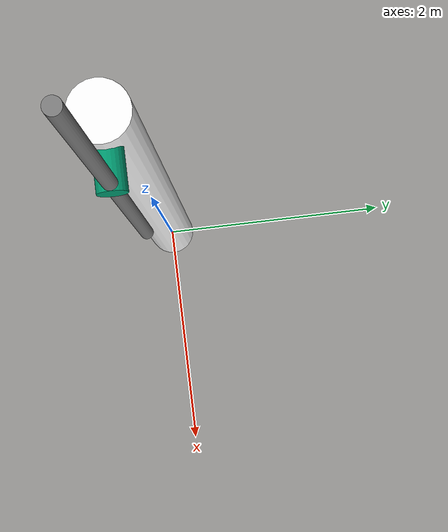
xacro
<?xml version="1.0"?>
<robot xmlns:xacro="http://www.ros.org/wiki/xacro" name="pole_machine">
    <xacro:property name="pole_radius" value="0.2"/>
    <xacro:property name="pole_length" value="5"/>
    <xacro:property name="mass" value="50.0"/>
    <xacro:property name="PI" value="3.14159265358979323846"/>

    <link name="base_link">
        <origin xyz="0 0 0" rpy="0 0 0"/>
    </link>

    <link name="pole_link">
        <visual>
            <geometry>
                <cylinder length="${pole_length}" radius="${pole_radius}"/>
            </geometry>
            <material name="white">
                <color rgba="1.0 1.0 1.0 1.0"/>
            </material>
            <origin xyz="0 0 ${pole_length/2}" rpy="0 0 0"/>
        </visual>
        <collision>
            <geometry>
                <cylinder length="${pole_length}" radius="${pole_radius}"/>
            </geometry>
            <origin xyz="0 0 ${pole_length/2}" rpy="0 0 0"/>
        </collision>
        <inertial>
            <mass value="10000"/>
            <origin xyz="0 0 ${pole_length/2}" rpy="0 0 0"/>
            <inertia ixx="1.0" ixy="0" ixz="0" iyy="1.0" iyz="0" izz="1.0"/>
        </inertial>
    </link>

    <link name="motor_link">
        <visual>
            <origin xyz="0 0 0" rpy="0 ${PI/2} 0"/>
            <geometry>
                <cylinder radius="0.1" length="0.5"/>
            </geometry>
        </visual>
        <collision>
            <origin xyz="0 0 0" rpy="0 ${PI/2} 0"/>
            <geometry>
                <cylinder radius="0.1" length="0.5"/>
            </geometry>
        </collision>
        <inertial>
            <mass value="1.0"/>
            <origin xyz="0 0 0" rpy="0 0 0"/>
            <inertia ixx="0.01" ixy="0" ixz="0" iyy="0.01" iyz="0" izz="0.01"/>
        </inertial>
    </link>

    <link name="bar_link">
        <visual>
            <origin xyz="0.2 0 0" rpy="0 0 0"/>
            <geometry>
                <cylinder length="4.0" radius="0.05"/>
            </geometry>
            <material name="gray">
                <color rgba="0.5 0.5 0.5 1.0"/>
            </material>
        </visual>
        <collision>
            <origin xyz="0.2 0 0" rpy="0 0 0"/>
            <geometry>
                <cylinder length="4.0" radius="0.05"/>
            </geometry>
        </collision>
        <inertial>
            <mass value="${mass}"/>
            <origin xyz="0.2 0 0" rpy="0 0 0"/>
            <!-- 计算转动惯量，利用公式I=1/12​ML^2 -->
            <inertia ixx="105" ixy="0" ixz="0" iyy="105" iyz="0" izz="100"/>
        </inertial>
    </link>

    <joint name="pole_joint" type="fixed">
        <parent link="base_link"/>
        <child link="pole_link"/>
        <origin xyz="0 0 0" rpy="0 0 0"/>
    </joint>

    <joint name="motor_joint" type="fixed">
        <parent link="pole_link"/>
        <child link="motor_link"/>
        <origin xyz="0.2 0 ${pole_length - 0.25}" rpy="0 0 0"/>
        <axis xyz="1 0 0"/>
    </joint>

    <joint name="bar_joint" type="continuous">
        <parent link="motor_link"/>
        <child link="bar_link"/>
        <origin xyz="0.0 0 0" rpy="0 0 0"/>
        <axis xyz="1 0 0"/>
    </joint>

    <transmission name="motor_trans">
        <type>transmission_interface/SimpleTransmission</type>
        <joint name="bar_joint">
            <hardwareInterface>hardware_interface/EffortJointInterface</hardwareInterface>
        </joint>
        <actuator name="bar_motor">
            <mechanicalReduction>1</mechanicalReduction>      <!--传动比定为1-->
        </actuator>
    </transmission>

    <gazebo>
        <plugin name="gazebo_ros_control" filename="libgazebo_ros_control.so">
            <robotNamespace>/</robotNamespace>
        </plugin>
    </gazebo>
</robot>
